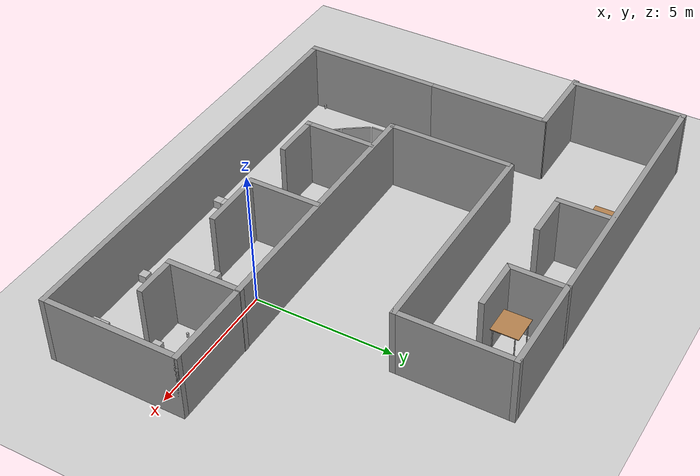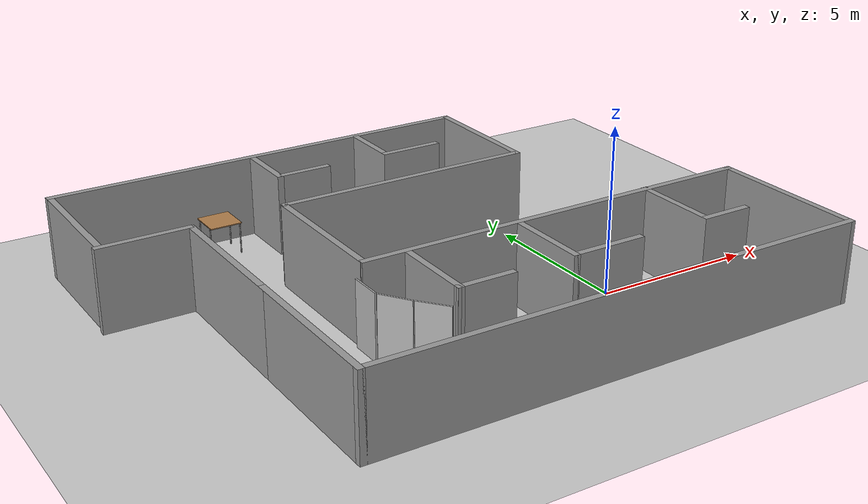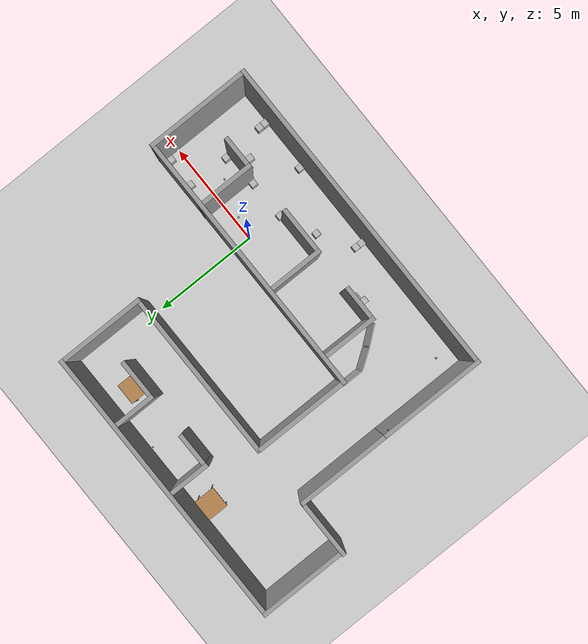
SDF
<sdf version="1.4">
 <world name="default">
  <physics type="ode">
   <gravity>0 0 -9.81</gravity>
   <ode>
    <solver><type>quick</type><iters>20</iters><sor>1</sor></solver>
    <constraints>
     <cfm>0</cfm>
     <erp>0.2</erp>
     <contact_max_correcting_vel>100</contact_max_correcting_vel>
     <contact_surface_layer>0</contact_surface_layer>
    </constraints>
   </ode>
   <real_time_update_rate>1000</real_time_update_rate>
   <max_step_size>0.001</max_step_size>
   <real_time_factor>1</real_time_factor>
  </physics>
  <light name="light1" type="directional">
   <pose>-2 0 4 0 -0 0</pose>
   <diffuse>1 1 1 1</diffuse>
   <specular>0.1 0.1 0.1 1</specular>
   <attenuation>
    <range>20</range>
    <constant>0.9</constant>
    <linear>0.01</linear>
    <quadratic>0.001</quadratic>
   </attenuation>
   <direction>0.2 0 -1</direction>
  </light>
  <model name="ground_plane">
   <static>1</static>
   <link name="link">
    <collision name="collision">
     <geometry><plane><normal>0 0 1</normal><size>100 100</size></plane></geometry>
     <surface><friction><ode><mu>100</mu><mu2>50</mu2></ode></friction></surface>
    </collision>
    <visual name="visual">
     <cast_shadows>0</cast_shadows>
     <geometry><plane><normal>0 0 1</normal><size>100 100</size></plane></geometry>
     <material>
      <script><uri>file://media/materials/scripts/gazebo.material</uri><name>Gazebo/Grey</name></script>
     </material>
    </visual>
    <velocity_decay><linear>0</linear><angular>0</angular></velocity_decay>
   </link>
  </model>
  <model name="building4">
   <pose>0.0604 0.08053 0 0 -0 0</pose>
   <link name="Wall_13">
    <collision name="Wall_13_Collision">
     <geometry><box><size>5.01 0.2 2.5</size></box></geometry>
     <pose>0 0 1.25 0 -0 0</pose>
    </collision>
    <visual name="Wall_13_Visual">
     <pose>0 0 1.25 0 -0 0</pose>
     <geometry><box><size>5.01 0.2 2.5</size></box></geometry>
     <material>
      <script><uri>file://media/materials/scripts/gazebo.material</uri><name>Gazebo/Grey</name></script>
     </material>
    </visual>
    <velocity_decay><linear>0</linear><angular>0</angular></velocity_decay>
    <pose>-10.233 -1.616 0 0 0 -1.5708</pose>
   </link>
   <link name="Wall_14">
    <collision name="Wall_14_Collision">
     <geometry><box><size>15.55 0.2 2.5</size></box></geometry>
     <pose>0 0 1.25 0 -0 0</pose>
    </collision>
    <visual name="Wall_14_Visual">
     <pose>0 0 1.25 0 -0 0</pose>
     <geometry><box><size>15.55 0.2 2.5</size></box></geometry>
     <material>
      <script><uri>file://media/materials/scripts/gazebo.material</uri><name>Gazebo/Grey</name></script>
     </material>
    </visual>
    <velocity_decay><linear>0</linear><angular>0</angular></velocity_decay>
    <pose>-2.55804 -4.02081 0 0 -0 2.5e-05</pose>
   </link>
   <link name="Wall_15">
    <collision name="Wall_15_Collision">
     <geometry><box><size>5.01 0.2 2.5</size></box></geometry>
     <pose>0 0 1.25 0 -0 0</pose>
    </collision>
    <visual name="Wall_15_Visual">
     <pose>0 0 1.25 0 -0 0</pose>
     <geometry><box><size>5.01 0.2 2.5</size></box></geometry>
     <material>
      <script><uri>file://media/materials/scripts/gazebo.material</uri><name>Gazebo/Grey</name></script>
     </material>
    </visual>
    <velocity_decay><linear>0</linear><angular>0</angular></velocity_decay>
    <pose>5.11693 -1.61562 0 0 -0 1.5708</pose>
   </link>
   <link name="Wall_16">
    <collision name="Wall_16_Collision">
     <geometry><box><size>12.72 0.2 2.5</size></box></geometry>
     <pose>0 0 1.25 0 -0 0</pose>
    </collision>
    <visual name="Wall_16_Visual">
     <pose>0 0 1.25 0 -0 0</pose>
     <geometry><box><size>12.72 0.2 2.5</size></box></geometry>
     <material>
      <script><uri>file://media/materials/scripts/gazebo.material</uri><name>Gazebo/Grey</name></script>
     </material>
    </visual>
    <velocity_decay><linear>0</linear><angular>0</angular></velocity_decay>
    <pose>-1.14308 0.789383 0 0 -0 3.14159</pose>
   </link>
   <link name="Wall_19">
    <collision name="Wall_19_Collision">
     <geometry><box><size>2.75243 0.2 2.5</size></box></geometry>
     <pose>0 0 1.25 0 -0 0</pose>
    </collision>
    <visual name="Wall_19_Visual">
     <pose>0 0 1.25 0 -0 0</pose>
     <geometry><box><size>2.75243 0.2 2.5</size></box></geometry>
     <material>
      <script><uri>file://media/materials/scripts/gazebo.material</uri><name>Gazebo/Grey</name></script>
     </material>
    </visual>
    <velocity_decay><linear>0</linear><angular>0</angular></velocity_decay>
    <pose>1.95298 -0.471453 0 0 0 -1.5708</pose>
   </link>
   <link name="Wall_20">
    <collision name="Wall_20_Collision">
     <geometry><box><size>1.61606 0.2 2.5</size></box></geometry>
     <pose>0 0 1.25 0 -0 0</pose>
    </collision>
    <visual name="Wall_20_Visual">
     <pose>0 0 1.25 0 -0 0</pose>
     <geometry><box><size>1.61606 0.2 2.5</size></box></geometry>
     <material>
      <script><uri>file://media/materials/scripts/gazebo.material</uri><name>Gazebo/Grey</name></script>
     </material>
    </visual>
    <velocity_decay><linear>0</linear><angular>0</angular></velocity_decay>
    <pose>2.66102 -1.74767 0 0 -0 0</pose>
   </link>
   <link name="Wall_22">
    <collision name="Wall_22_Collision">
     <geometry><box><size>2.69952 0.2 2.5</size></box></geometry>
     <pose>0 0 1.25 0 -0 0</pose>
    </collision>
    <visual name="Wall_22_Visual">
     <pose>0 0 1.25 0 -0 0</pose>
     <geometry><box><size>2.69952 0.2 2.5</size></box></geometry>
     <material>
      <script><uri>file://media/materials/scripts/gazebo.material</uri><name>Gazebo/Grey</name></script>
     </material>
    </visual>
    <velocity_decay><linear>0</linear><angular>0</angular></velocity_decay>
    <pose>-2.56997 -0.511128 0 0 0 -1.5708</pose>
   </link>
   <link name="Wall_23">
    <collision name="Wall_23_Collision">
     <geometry><box><size>2.34347 0.2 2.5</size></box></geometry>
     <pose>0 0 1.25 0 -0 0</pose>
    </collision>
    <visual name="Wall_23_Visual">
     <pose>0 0 1.25 0 -0 0</pose>
     <geometry><box><size>2.34347 0.2 2.5</size></box></geometry>
     <material>
      <script><uri>file://media/materials/scripts/gazebo.material</uri><name>Gazebo/Grey</name></script>
     </material>
    </visual>
    <velocity_decay><linear>0</linear><angular>0</angular></velocity_decay>
    <pose>-1.49823 -1.76089 0 0 -0 0</pose>
   </link>
   <link name="Wall_27">
    <collision name="Wall_27_Collision">
     <geometry><box><size>2.67304 0.2 2.5</size></box></geometry>
     <pose>0 0 1.25 0 -0 0</pose>
    </collision>
    <visual name="Wall_27_Visual">
     <pose>0 0 1.25 0 -0 0</pose>
     <geometry><box><size>2.67304 0.2 2.5</size></box></geometry>
     <material>
      <script><uri>file://media/materials/scripts/gazebo.material</uri><name>Gazebo/Grey</name></script>
     </material>
    </visual>
    <velocity_decay><linear>0</linear><angular>0</angular></velocity_decay>
    <pose>-6.134 -0.5245 0 0 0 -1.57646</pose>
   </link>
   <link name="Wall_28">
    <collision name="Wall_28_Collision">
     <geometry><box><size>1.78778 0.2 2.5</size></box></geometry>
     <pose>0 0 1.25 0 -0 0</pose>
    </collision>
    <visual name="Wall_28_Visual">
     <pose>0 0 1.25 0 -0 0</pose>
     <geometry><box><size>1.78778 0.2 2.5</size></box></geometry>
     <material>
      <script><uri>file://media/materials/scripts/gazebo.material</uri><name>Gazebo/Grey</name></script>
     </material>
    </visual>
    <velocity_decay><linear>0</linear><angular>0</angular></velocity_decay>
    <pose>-5.34711 -1.761 0 0 -0 0</pose>
   </link>
   <link name="Wall_30">
    <collision name="Wall_30_Collision">
     <geometry><box><size>4.722 0.2 2.5</size></box></geometry>
     <pose>0 0 1.25 0 -0 0</pose>
    </collision>
    <visual name="Wall_30_Visual">
     <pose>0 0 1.25 0 -0 0</pose>
     <geometry><box><size>4.722 0.2 2.5</size></box></geometry>
     <material>
      <script><uri>file://media/materials/scripts/gazebo.material</uri><name>Gazebo/Grey</name></script>
     </material>
    </visual>
    <velocity_decay><linear>0</linear><angular>0</angular></velocity_decay>
    <pose>-10.233 2.952 0 0 -0 1.5708</pose>
   </link>
   <link name="Wall_32">
    <collision name="Wall_32_Collision">
     <geometry><box><size>4.52699 0.2 2.5</size></box></geometry>
     <pose>0 0 1.25 0 -0 0</pose>
    </collision>
    <visual name="Wall_32_Visual">
     <pose>0 0 1.25 0 -0 0</pose>
     <geometry><box><size>4.52699 0.2 2.5</size></box></geometry>
     <material>
      <script><uri>file://media/materials/scripts/gazebo.material</uri><name>Gazebo/Grey</name></script>
     </material>
    </visual>
    <velocity_decay><linear>0</linear><angular>0</angular></velocity_decay>
    <pose>-7.41943 3.02427 0 0 -0 1.5708</pose>
   </link>
   <link name="Wall_35">
    <collision name="Wall_35_Collision">
     <geometry><box><size>2.80534 0.2 2.5</size></box></geometry>
     <pose>0 0 1.25 0 -0 0</pose>
    </collision>
    <visual name="Wall_35_Visual">
     <pose>0 0 1.25 0 -0 0</pose>
     <geometry><box><size>2.80534 0.2 2.5</size></box></geometry>
     <material>
      <script><uri>file://media/materials/scripts/gazebo.material</uri><name>Gazebo/Grey</name></script>
     </material>
    </visual>
    <velocity_decay><linear>0</linear><angular>0</angular></velocity_decay>
    <pose>-11.5868 5.23749 0 0 -0 3.14159</pose>
   </link>
   <link name="Wall_38">
    <collision name="Wall_38_Collision">
     <geometry><box><size>4.19003 0.2 2.5</size></box></geometry>
     <pose>0 0 1.25 0 -0 0</pose>
    </collision>
    <visual name="Wall_38_Visual">
     <pose>0 0 1.25 0 -0 0</pose>
     <geometry><box><size>4.19003 0.2 2.5</size></box></geometry>
     <material>
      <script><uri>file://media/materials/scripts/gazebo.material</uri><name>Gazebo/Grey</name></script>
     </material>
    </visual>
    <velocity_decay><linear>0</linear><angular>0</angular></velocity_decay>
    <pose>-12.8151 7.30342 0 0 -0 1.5708</pose>
   </link>
   <link name="Wall_39">
    <collision name="Wall_39_Collision">
     <geometry><box><size>13.5347 0.2 2.5</size></box></geometry>
     <pose>0 0 1.25 0 -0 0</pose>
    </collision>
    <visual name="Wall_39_Visual">
     <pose>0 0 1.25 0 -0 0</pose>
     <geometry><box><size>13.5347 0.2 2.5</size></box></geometry>
     <material>
      <script><uri>file://media/materials/scripts/gazebo.material</uri><name>Gazebo/Grey</name></script>
     </material>
    </visual>
    <velocity_decay><linear>0</linear><angular>0</angular></velocity_decay>
    <pose>-6.14777 9.29843 0 0 -0 0</pose>
   </link>
   <link name="Wall_40">
    <collision name="Wall_40_Collision">
     <geometry><box><size>4.21663 0.2 2.5</size></box></geometry>
     <pose>0 0 1.25 0 -0 0</pose>
    </collision>
    <visual name="Wall_40_Visual">
     <pose>0 0 1.25 0 -0 0</pose>
     <geometry><box><size>4.21663 0.2 2.5</size></box></geometry>
     <material>
      <script><uri>file://media/materials/scripts/gazebo.material</uri><name>Gazebo/Grey</name></script>
     </material>
    </visual>
    <velocity_decay><linear>0</linear><angular>0</angular></velocity_decay>
    <pose>0.51957 7.29012 0 0 0 -1.5708</pose>
   </link>
   <link name="Wall_41">
    <collision name="Wall_41_Collision">
     <geometry><box><size>8.1083 0.2 2.5</size></box></geometry>
     <pose>0 0 1.25 0 -0 0</pose>
    </collision>
    <visual name="Wall_41_Visual">
     <pose>0 0 1.25 0 -0 0</pose>
     <geometry><box><size>8.1083 0.2 2.5</size></box></geometry>
     <material>
      <script><uri>file://media/materials/scripts/gazebo.material</uri><name>Gazebo/Grey</name></script>
     </material>
    </visual>
    <velocity_decay><linear>0</linear><angular>0</angular></velocity_decay>
    <pose>-3.43455 5.2818 0 0 -0 3.14159</pose>
   </link>
   <link name="Wall_43">
    <collision name="Wall_43_Collision">
     <geometry><box><size>2.14297 0.2 2.5</size></box></geometry>
     <pose>0 0 1.25 0 -0 0</pose>
    </collision>
    <visual name="Wall_43_Visual">
     <pose>0 0 1.25 0 -0 0</pose>
     <geometry><box><size>2.14297 0.2 2.5</size></box></geometry>
     <material>
      <script><uri>file://media/materials/scripts/gazebo.material</uri><name>Gazebo/Grey</name></script>
     </material>
    </visual>
    <velocity_decay><linear>0</linear><angular>0</angular></velocity_decay>
    <pose>-2.91992 8.32953 0 0 0 -1.5708</pose>
   </link>
   <link name="Wall_44">
    <collision name="Wall_44_Collision">
     <geometry><box><size>1.98106 0.2 2.5</size></box></geometry>
     <pose>0 0 1.25 0 -0 0</pose>
    </collision>
    <visual name="Wall_44_Visual">
     <pose>0 0 1.25 0 -0 0</pose>
     <geometry><box><size>1.98106 0.2 2.5</size></box></geometry>
     <material>
      <script><uri>file://media/materials/scripts/gazebo.material</uri><name>Gazebo/Grey</name></script>
     </material>
    </visual>
    <velocity_decay><linear>0</linear><angular>0</angular></velocity_decay>
    <pose>-2.02939 7.35804 0 0 -0 0</pose>
   </link>
   <link name="Wall_54">
    <collision name="Wall_54_Collision">
     <geometry><box><size>2.03541 0.2 2.5</size></box></geometry>
     <pose>0 0 1.25 0 -0 0</pose>
    </collision>
    <visual name="Wall_54_Visual">
     <pose>0 0 1.25 0 -0 0</pose>
     <geometry><box><size>2.03541 0.2 2.5</size></box></geometry>
     <material>
      <script><uri>file://media/materials/scripts/gazebo.material</uri><name>Gazebo/Grey</name></script>
     </material>
    </visual>
    <velocity_decay><linear>0</linear><angular>0</angular></velocity_decay>
    <pose>-6.52977 8.31143 0 0 0 -1.5708</pose>
   </link>
   <link name="Wall_55">
    <collision name="Wall_55_Collision">
     <geometry><box><size>1.7601 0.2 2.5</size></box></geometry>
     <pose>0 0 1.25 0 -0 0</pose>
    </collision>
    <visual name="Wall_55_Visual">
     <pose>0 0 1.25 0 -0 0</pose>
     <geometry><box><size>1.7601 0.2 2.5</size></box></geometry>
     <material>
      <script><uri>file://media/materials/scripts/gazebo.material</uri><name>Gazebo/Grey</name></script>
     </material>
    </visual>
    <velocity_decay><linear>0</linear><angular>0</angular></velocity_decay>
    <pose>-5.74972 7.39373 0 0 -0 0</pose>
   </link>
   <static>1</static>
  </model>
  <scene><ambient>0.4 0.4 0.4 1</ambient><background>0.7 0.7 0.7 1</background><shadows>1</shadows></scene>
  <spherical_coordinates>
   <surface_model>EARTH_WGS84</surface_model>
   <latitude_deg>0</latitude_deg>
   <longitude_deg>0</longitude_deg>
   <elevation>0</elevation>
   <heading_deg>0</heading_deg>
  </spherical_coordinates>
  <model name="cocacola">
   <static>0</static>
   <link name="link">
    <inertial>
     <mass>0.25</mass>
     <inertia><ixx>0</ixx><ixy>0</ixy><ixz>0</ixz><iyy>0</iyy><iyz>0</iyz><izz>0</izz></inertia>
    </inertial>
    <collision name="collision">
     <pose>0 0 0.075 -3.14159 -0 0</pose>
     <geometry><cylinder><radius>0.04</radius><length>0.15</length></cylinder></geometry>
    </collision>
    <visual name="visual">
     <pose>0 0 0.075 -3.14159 -0 0</pose>
     <geometry><cylinder><radius>0.04</radius><length>0.15</length></cylinder></geometry>
     <material>
      <script>
       <uri>model://cocacola/material/scripts</uri>
       <uri>model://cocacola/material/textures</uri>
       <name>Custom/cocacola</name>
      </script>
     </material>
    </visual>
    <velocity_decay><linear>0</linear><angular>0</angular></velocity_decay>
   </link>
   <pose>2.68091 -0.744272 0.299998 0.000162 -9.6e-05 2.9e-05</pose>
  </model>
  <model name="cocacola_0">
   <static>0</static>
   <link name="link">
    <inertial>
     <mass>0.25</mass>
     <inertia><ixx>0</ixx><ixy>0</ixy><ixz>0</ixz><iyy>0</iyy><iyz>0</iyz><izz>0</izz></inertia>
    </inertial>
    <collision name="collision">
     <pose>0 0 0.075 -3.14159 -0 0</pose>
     <geometry><cylinder><radius>0.04</radius><length>0.15</length></cylinder></geometry>
    </collision>
    <visual name="visual">
     <pose>0 0 0.075 -3.14159 -0 0</pose>
     <geometry><cylinder><radius>0.04</radius><length>0.15</length></cylinder></geometry>
     <material>
      <script>
       <uri>model://cocacola/material/scripts</uri>
       <uri>model://cocacola/material/textures</uri>
       <name>Custom/cocacola</name>
      </script>
     </material>
    </visual>
    <velocity_decay><linear>0</linear><angular>0</angular></velocity_decay>
   </link>
   <pose>1 -0.177691 0.300008 3.1e-05 -0.000208 4e-06</pose>
  </model>
  <model name="cocacola_1">
   <static>0</static>
   <link name="link">
    <inertial>
     <mass>0.25</mass>
     <inertia><ixx>0</ixx><ixy>0</ixy><ixz>0</ixz><iyy>0</iyy><iyz>0</iyz><izz>0</izz></inertia>
    </inertial>
    <collision name="collision">
     <pose>0 0 0.075 -3.14159 -0 0</pose>
     <geometry><cylinder><radius>0.04</radius><length>0.15</length></cylinder></geometry>
    </collision>
    <visual name="visual">
     <pose>0 0 0.075 -3.14159 -0 0</pose>
     <geometry><cylinder><radius>0.04</radius><length>0.15</length></cylinder></geometry>
     <material>
      <script>
       <uri>model://cocacola/material/scripts</uri>
       <uri>model://cocacola/material/textures</uri>
       <name>Custom/cocacola</name>
      </script>
     </material>
    </visual>
    <velocity_decay><linear>0</linear><angular>0</angular></velocity_decay>
   </link>
   <pose>-9.25325 -3 0.660008 3.1e-05 -0.0002 9e-06</pose>
  </model>
  <model name="table_1m">
   <static>1</static>
   <link name="link">
    <collision name="surface">
     <pose>0 0 1.01 0 -0 0</pose>
     <geometry><box><size>1 1.01 0.03</size></box></geometry>
    </collision>
    <visual name="visual1">
     <pose>0 0 1.01 0 -0 0</pose>
     <geometry><box><size>1 1.01 0.03</size></box></geometry>
     <material>
      <script><uri>file://media/materials/scripts/gazebo.material</uri><name>Gazebo/Wood</name></script>
     </material>
    </visual>
    <collision name="front_left_leg">
     <pose>0.48 0.38 0.5005 0 -0 0</pose>
     <geometry><cylinder><radius>0.02</radius><length>1.01</length></cylinder></geometry>
    </collision>
    <visual name="front_left_leg">
     <pose>0.48 0.38 0.5005 0 -0 0</pose>
     <geometry><cylinder><radius>0.02</radius><length>1.01</length></cylinder></geometry>
     <material>
      <script><uri>file://media/materials/scripts/gazebo.material</uri><name>Gazebo/Grey</name></script>
     </material>
    </visual>
    <collision name="front_right_leg">
     <pose>0.48 -0.38 0.5005 0 -0 0</pose>
     <geometry><cylinder><radius>0.02</radius><length>1.01</length></cylinder></geometry>
    </collision>
    <visual name="front_right_leg">
     <pose>0.48 -0.38 0.5005 0 -0 0</pose>
     <geometry><cylinder><radius>0.02</radius><length>1.01</length></cylinder></geometry>
     <material>
      <script><uri>file://media/materials/scripts/gazebo.material</uri><name>Gazebo/Grey</name></script>
     </material>
    </visual>
    <collision name="back_right_leg">
     <pose>-0.48 -0.38 0.5005 0 -0 0</pose>
     <geometry><cylinder><radius>0.02</radius><length>1.01</length></cylinder></geometry>
    </collision>
    <visual name="back_right_leg">
     <pose>-0.48 -0.38 0.5005 0 -0 0</pose>
     <geometry><cylinder><radius>0.02</radius><length>1.01</length></cylinder></geometry>
     <material>
      <script><uri>file://media/materials/scripts/gazebo.material</uri><name>Gazebo/Grey</name></script>
     </material>
    </visual>
    <collision name="back_left_leg">
     <pose>-0.48 0.38 0.5005 0 -0 0</pose>
     <geometry><cylinder><radius>0.02</radius><length>1.01</length></cylinder></geometry>
    </collision>
    <visual name="back_left_leg">
     <pose>-0.48 0.38 0.5005 0 -0 0</pose>
     <geometry><cylinder><radius>0.02</radius><length>1.01</length></cylinder></geometry>
     <material>
      <script><uri>file://media/materials/scripts/gazebo.material</uri><name>Gazebo/Grey</name></script>
     </material>
    </visual>
    <velocity_decay><linear>0</linear><angular>0</angular></velocity_decay>
   </link>
   <pose>-8 8.5652 0 0 -0 0</pose>
  </model>
  <model name="cocacola_3">
   <static>0</static>
   <link name="link">
    <inertial>
     <mass>0.25</mass>
     <inertia><ixx>0</ixx><ixy>0</ixy><ixz>0</ixz><iyy>0</iyy><iyz>0</iyz><izz>0</izz></inertia>
    </inertial>
    <collision name="collision">
     <pose>0 0 0.075 -3.14159 -0 0</pose>
     <geometry><cylinder><radius>0.04</radius><length>0.15</length></cylinder></geometry>
    </collision>
    <visual name="visual">
     <pose>0 0 0.075 -3.14159 -0 0</pose>
     <geometry><cylinder><radius>0.04</radius><length>0.15</length></cylinder></geometry>
     <material>
      <script>
       <uri>model://cocacola/material/scripts</uri>
       <uri>model://cocacola/material/textures</uri>
       <name>Custom/cocacola</name>
      </script>
     </material>
    </visual>
    <velocity_decay><linear>0</linear><angular>0</angular></velocity_decay>
   </link>
   <pose>-4.52272 9.0837 0.61001 -4e-06 -0.000244 1.8e-05</pose>
  </model>
  <model name="table_1m_0">
   <static>1</static>
   <link name="link">
    <collision name="surface">
     <pose>0 0 1.01 0 -0 0</pose>
     <geometry><box><size>1 1.01 0.03</size></box></geometry>
    </collision>
    <visual name="visual1">
     <pose>0 0 1.01 0 -0 0</pose>
     <geometry><box><size>1 1.01 0.03</size></box></geometry>
     <material>
      <script><uri>file://media/materials/scripts/gazebo.material</uri><name>Gazebo/Wood</name></script>
     </material>
    </visual>
    <collision name="front_left_leg">
     <pose>0.48 0.38 0.5005 0 -0 0</pose>
     <geometry><cylinder><radius>0.02</radius><length>1.01</length></cylinder></geometry>
    </collision>
    <visual name="front_left_leg">
     <pose>0.48 0.38 0.5005 0 -0 0</pose>
     <geometry><cylinder><radius>0.02</radius><length>1.01</length></cylinder></geometry>
     <material>
      <script><uri>file://media/materials/scripts/gazebo.material</uri><name>Gazebo/Grey</name></script>
     </material>
    </visual>
    <collision name="front_right_leg">
     <pose>0.48 -0.38 0.5005 0 -0 0</pose>
     <geometry><cylinder><radius>0.02</radius><length>1.01</length></cylinder></geometry>
    </collision>
    <visual name="front_right_leg">
     <pose>0.48 -0.38 0.5005 0 -0 0</pose>
     <geometry><cylinder><radius>0.02</radius><length>1.01</length></cylinder></geometry>
     <material>
      <script><uri>file://media/materials/scripts/gazebo.material</uri><name>Gazebo/Grey</name></script>
     </material>
    </visual>
    <collision name="back_right_leg">
     <pose>-0.48 -0.38 0.5005 0 -0 0</pose>
     <geometry><cylinder><radius>0.02</radius><length>1.01</length></cylinder></geometry>
    </collision>
    <visual name="back_right_leg">
     <pose>-0.48 -0.38 0.5005 0 -0 0</pose>
     <geometry><cylinder><radius>0.02</radius><length>1.01</length></cylinder></geometry>
     <material>
      <script><uri>file://media/materials/scripts/gazebo.material</uri><name>Gazebo/Grey</name></script>
     </material>
    </visual>
    <collision name="back_left_leg">
     <pose>-0.48 0.38 0.5005 0 -0 0</pose>
     <geometry><cylinder><radius>0.02</radius><length>1.01</length></cylinder></geometry>
    </collision>
    <visual name="back_left_leg">
     <pose>-0.48 0.38 0.5005 0 -0 0</pose>
     <geometry><cylinder><radius>0.02</radius><length>1.01</length></cylinder></geometry>
     <material>
      <script><uri>file://media/materials/scripts/gazebo.material</uri><name>Gazebo/Grey</name></script>
     </material>
    </visual>
    <velocity_decay><linear>0</linear><angular>0</angular></velocity_decay>
   </link>
   <pose>-2 8 0 0 -0 0</pose>
  </model>
  <model name="box">
   <static>0</static>
   <link name="box">
    <pose>0 0 0.5 0 -0 0</pose>
    <collision name="collision"><geometry><box><size>0.3 0.3 0.3</size></box></geometry></collision>
    <visual name="visual">
     <geometry><box><size>0.3 0.3 0.3</size></box></geometry>
     <material>
      <script>
       <uri>model://box/material/scripts</uri>
       <uri>model://box/material/textures</uri>
       <name>Custom/box</name>
      </script>
     </material>
    </visual>
    <velocity_decay><linear>0</linear><angular>0</angular></velocity_decay>
    <inertial>
     <inertia><ixx>1</ixx><ixy>0</ixy><ixz>0</ixz><iyy>1</iyy><iyz>0</iyz><izz>1</izz></inertia>
     <mass>1</mass>
    </inertial>
   </link>
   <pose>-0.084765 -1.65647 -0.35 1e-06 1e-06 5.3e-05</pose>
  </model>
  <model name="box_0">
   <static>0</static>
   <link name="box">
    <pose>0 0 0.5 0 -0 0</pose>
    <collision name="collision"><geometry><box><size>0.3 0.3 0.3</size></box></geometry></collision>
    <visual name="visual">
     <geometry><box><size>0.3 0.3 0.3</size></box></geometry>
     <material>
      <script>
       <uri>model://box/material/scripts</uri>
       <uri>model://box/material/textures</uri>
       <name>Custom/box</name>
      </script>
     </material>
    </visual>
    <velocity_decay><linear>0</linear><angular>0</angular></velocity_decay>
    <inertial>
     <inertia><ixx>1</ixx><ixy>0</ixy><ixz>0</ixz><iyy>1</iyy><iyz>0</iyz><izz>1</izz></inertia>
     <mass>1</mass>
    </inertial>
   </link>
   <pose>3.40517 -1.40484 -0.349998 1e-06 1.3e-05 -1.3e-05</pose>
  </model>
  <model name="box_1">
   <static>0</static>
   <link name="box">
    <pose>0 0 0.5 0 -0 0</pose>
    <collision name="collision"><geometry><box><size>0.3 0.3 0.3</size></box></geometry></collision>
    <visual name="visual">
     <geometry><box><size>0.3 0.3 0.3</size></box></geometry>
     <material>
      <script>
       <uri>model://box/material/scripts</uri>
       <uri>model://box/material/textures</uri>
       <name>Custom/box</name>
      </script>
     </material>
    </visual>
    <velocity_decay><linear>0</linear><angular>0</angular></velocity_decay>
    <inertial>
     <inertia><ixx>1</ixx><ixy>0</ixy><ixz>0</ixz><iyy>1</iyy><iyz>0</iyz><izz>1</izz></inertia>
     <mass>1</mass>
    </inertial>
   </link>
   <pose>3.45349 0.568201 -0.35 0 -0 -0.000206</pose>
  </model>
  <model name="box_2">
   <static>0</static>
   <link name="box">
    <pose>0 0 0.5 0 -0 0</pose>
    <collision name="collision"><geometry><box><size>0.3 0.3 0.3</size></box></geometry></collision>
    <visual name="visual">
     <geometry><box><size>0.3 0.3 0.3</size></box></geometry>
     <material>
      <script>
       <uri>model://box/material/scripts</uri>
       <uri>model://box/material/textures</uri>
       <name>Custom/box</name>
      </script>
     </material>
    </visual>
    <velocity_decay><linear>0</linear><angular>0</angular></velocity_decay>
    <inertial>
     <inertia><ixx>1</ixx><ixy>0</ixy><ixz>0</ixz><iyy>1</iyy><iyz>0</iyz><izz>1</izz></inertia>
     <mass>1</mass>
    </inertial>
   </link>
   <pose>4.85744 0.537547 -0.35 5.16988e-26 -2e-06 -8.4e-05</pose>
  </model>
  <model name="box_3">
   <static>0</static>
   <link name="box">
    <pose>0 0 0.5 0 -0 0</pose>
    <collision name="collision"><geometry><box><size>0.3 0.3 0.3</size></box></geometry></collision>
    <visual name="visual">
     <geometry><box><size>0.3 0.3 0.3</size></box></geometry>
     <material>
      <script>
       <uri>model://box/material/scripts</uri>
       <uri>model://box/material/textures</uri>
       <name>Custom/box</name>
      </script>
     </material>
    </visual>
    <velocity_decay><linear>0</linear><angular>0</angular></velocity_decay>
    <inertial>
     <inertia><ixx>1</ixx><ixy>0</ixy><ixz>0</ixz><iyy>1</iyy><iyz>0</iyz><izz>1</izz></inertia>
     <mass>1</mass>
    </inertial>
   </link>
   <pose>1.76308 -1.62442 -0.350001 4e-06 -3e-06 -0.001889</pose>
  </model>
  <model name="box_5">
   <static>0</static>
   <link name="box">
    <pose>0 0 0.5 0 -0 0</pose>
    <collision name="collision"><geometry><box><size>0.3 0.3 0.3</size></box></geometry></collision>
    <visual name="visual">
     <geometry><box><size>0.3 0.3 0.3</size></box></geometry>
     <material>
      <script>
       <uri>model://box/material/scripts</uri>
       <uri>model://box/material/textures</uri>
       <name>Custom/box</name>
      </script>
     </material>
    </visual>
    <velocity_decay><linear>0</linear><angular>0</angular></velocity_decay>
    <inertial>
     <inertia><ixx>1</ixx><ixy>0</ixy><ixz>0</ixz><iyy>1</iyy><iyz>0</iyz><izz>1</izz></inertia>
     <mass>1</mass>
    </inertial>
   </link>
   <pose>-5 -2.00001 -0.35 -2e-06 -0 0.000118</pose>
  </model>
  <model name="box_8">
   <static>0</static>
   <link name="box">
    <pose>0 0 0.5 0 -0 0</pose>
    <collision name="collision"><geometry><box><size>0.3 0.3 0.3</size></box></geometry></collision>
    <visual name="visual">
     <geometry><box><size>0.3 0.3 0.3</size></box></geometry>
     <material>
      <script>
       <uri>model://box/material/scripts</uri>
       <uri>model://box/material/textures</uri>
       <name>Custom/box</name>
      </script>
     </material>
    </visual>
    <velocity_decay><linear>0</linear><angular>0</angular></velocity_decay>
    <inertial>
     <inertia><ixx>1</ixx><ixy>0</ixy><ixz>0</ixz><iyy>1</iyy><iyz>0</iyz><izz>1</izz></inertia>
     <mass>1</mass>
    </inertial>
   </link>
   <pose>2.48617 -1.91721 -0.349999 -5e-06 1e-06 0.000199</pose>
  </model>
  <model name="box_9">
   <static>0</static>
   <link name="box">
    <pose>0 0 0.5 0 -0 0</pose>
    <collision name="collision"><geometry><box><size>0.3 0.3 0.3</size></box></geometry></collision>
    <visual name="visual">
     <geometry><box><size>0.3 0.3 0.3</size></box></geometry>
     <material>
      <script>
       <uri>model://box/material/scripts</uri>
       <uri>model://box/material/textures</uri>
       <name>Custom/box</name>
      </script>
     </material>
    </visual>
    <velocity_decay><linear>0</linear><angular>0</angular></velocity_decay>
    <inertial>
     <inertia><ixx>1</ixx><ixy>0</ixy><ixz>0</ixz><iyy>1</iyy><iyz>0</iyz><izz>1</izz></inertia>
     <mass>1</mass>
    </inertial>
   </link>
   <pose>1.01486 -3.6544 -0.35 1e-06 -1e-06 -0.000112</pose>
  </model>
  <model name="box_7">
   <static>0</static>
   <link name="box">
    <pose>0 0 0.5 0 -0 0</pose>
    <collision name="collision"><geometry><box><size>0.3 0.3 0.3</size></box></geometry></collision>
    <visual name="visual">
     <geometry><box><size>0.3 0.3 0.3</size></box></geometry>
     <material>
      <script>
       <uri>model://box/material/scripts</uri>
       <uri>model://box/material/textures</uri>
       <name>Custom/box</name>
      </script>
     </material>
    </visual>
    <velocity_decay><linear>0</linear><angular>0</angular></velocity_decay>
    <inertial>
     <inertia><ixx>1</ixx><ixy>0</ixy><ixz>0</ixz><iyy>1</iyy><iyz>0</iyz><izz>1</izz></inertia>
     <mass>1</mass>
    </inertial>
   </link>
   <pose>-3.2886 -3.69028 -0.35 -1e-06 -0 7.6e-05</pose>
  </model>
  <model name="box_11">
   <static>0</static>
   <link name="box">
    <pose>0 0 0.5 0 -0 0</pose>
    <collision name="collision"><geometry><box><size>0.3 0.3 0.3</size></box></geometry></collision>
    <visual name="visual">
     <geometry><box><size>0.3 0.3 0.3</size></box></geometry>
     <material>
      <script>
       <uri>model://box/material/scripts</uri>
       <uri>model://box/material/textures</uri>
       <name>Custom/box</name>
      </script>
     </material>
    </visual>
    <velocity_decay><linear>0</linear><angular>0</angular></velocity_decay>
    <inertial>
     <inertia><ixx>1</ixx><ixy>0</ixy><ixz>0</ixz><iyy>1</iyy><iyz>0</iyz><izz>1</izz></inertia>
     <mass>1</mass>
    </inertial>
   </link>
   <pose>2.73141 -2.21725 -0.35 -1e-06 -1e-06 0.000657</pose>
  </model>
  <model name="box_13">
   <static>0</static>
   <link name="box">
    <pose>0 0 0.5 0 -0 0</pose>
    <collision name="collision"><geometry><box><size>0.3 0.3 0.3</size></box></geometry></collision>
    <visual name="visual">
     <geometry><box><size>0.3 0.3 0.3</size></box></geometry>
     <material>
      <script>
       <uri>model://box/material/scripts</uri>
       <uri>model://box/material/textures</uri>
       <name>Custom/box</name>
      </script>
     </material>
    </visual>
    <velocity_decay><linear>0</linear><angular>0</angular></velocity_decay>
    <inertial>
     <inertia><ixx>1</ixx><ixy>0</ixy><ixz>0</ixz><iyy>1</iyy><iyz>0</iyz><izz>1</izz></inertia>
     <mass>1</mass>
    </inertial>
   </link>
   <pose>3.5182 -3.6901 -0.35 0 -0 6.2e-05</pose>
  </model>
  <model name="box_19">
   <static>0</static>
   <link name="box">
    <pose>0 0 0.5 0 -0 0</pose>
    <collision name="collision"><geometry><box><size>0.3 0.3 0.3</size></box></geometry></collision>
    <visual name="visual">
     <geometry><box><size>0.3 0.3 0.3</size></box></geometry>
     <material>
      <script>
       <uri>model://box/material/scripts</uri>
       <uri>model://box/material/textures</uri>
       <name>Custom/box</name>
      </script>
     </material>
    </visual>
    <velocity_decay><linear>0</linear><angular>0</angular></velocity_decay>
    <inertial>
     <inertia><ixx>1</ixx><ixy>0</ixy><ixz>0</ixz><iyy>1</iyy><iyz>0</iyz><izz>1</izz></inertia>
     <mass>1</mass>
    </inertial>
   </link>
   <pose>3.51856 -3.38997 -0.35 2.06795e-25 2e-06 0.000845</pose>
  </model>
  <model name="box_6">
   <static>0</static>
   <link name="box">
    <pose>0 0 0.5 0 -0 0</pose>
    <collision name="collision"><geometry><box><size>0.3 0.3 0.3</size></box></geometry></collision>
    <visual name="visual">
     <geometry><box><size>0.3 0.3 0.3</size></box></geometry>
     <material>
      <script>
       <uri>model://box/material/scripts</uri>
       <uri>model://box/material/textures</uri>
       <name>Custom/box</name>
      </script>
     </material>
    </visual>
    <velocity_decay><linear>0</linear><angular>0</angular></velocity_decay>
    <inertial>
     <inertia><ixx>1</ixx><ixy>0</ixy><ixz>0</ixz><iyy>1</iyy><iyz>0</iyz><izz>1</izz></inertia>
     <mass>1</mass>
    </inertial>
   </link>
   <pose>-1.71728 -2.41301 -0.35 -1e-06 1.29247e-26 0.000104</pose>
  </model>
  <model name="box_24">
   <static>0</static>
   <link name="box">
    <pose>0 0 0.5 0 -0 0</pose>
    <collision name="collision"><geometry><box><size>0.3 0.3 0.3</size></box></geometry></collision>
    <visual name="visual">
     <geometry><box><size>0.3 0.3 0.3</size></box></geometry>
     <material>
      <script>
       <uri>model://box/material/scripts</uri>
       <uri>model://box/material/textures</uri>
       <name>Custom/box</name>
      </script>
     </material>
    </visual>
    <velocity_decay><linear>0</linear><angular>0</angular></velocity_decay>
    <inertial>
     <inertia><ixx>1</ixx><ixy>0</ixy><ixz>0</ixz><iyy>1</iyy><iyz>0</iyz><izz>1</izz></inertia>
     <mass>1</mass>
    </inertial>
   </link>
   <pose>2.94593 -1.91714 -0.35 -1e-06 -1e-06 8e-06</pose>
  </model>
  <model name="box_22">
   <static>0</static>
   <link name="box">
    <pose>0 0 0.5 0 -0 0</pose>
    <collision name="collision"><geometry><box><size>0.3 0.3 0.3</size></box></geometry></collision>
    <visual name="visual">
     <geometry><box><size>0.3 0.3 0.3</size></box></geometry>
     <material>
      <script>
       <uri>model://box/material/scripts</uri>
       <uri>model://box/material/textures</uri>
       <name>Custom/box</name>
      </script>
     </material>
    </visual>
    <velocity_decay><linear>0</linear><angular>0</angular></velocity_decay>
    <inertial>
     <inertia><ixx>1</ixx><ixy>0</ixy><ixz>0</ixz><iyy>1</iyy><iyz>0</iyz><izz>1</izz></inertia>
     <mass>1</mass>
    </inertial>
   </link>
   <pose>-5.34698 -2.19157 -0.350001 4e-06 -2e-06 3.7e-05</pose>
  </model>
  <model name="table">
   <link name="wallWithREEMphoto_body">
    <inertial>
     <mass>4</mass>
     <inertia><ixx>1</ixx><ixy>0</ixy><ixz>0</ixz><iyy>1</iyy><iyz>0</iyz><izz>1</izz></inertia>
    </inertial>
    <collision name="collision"><geometry><box><size>0.05 1 2</size></box></geometry></collision>
    <visual name="visual">
     <geometry><box><size>0.05 1 2</size></box></geometry>
     <material>
      <script>
       <uri>model://wall_with_reem_photo/material/scripts</uri>
       <uri>model://wall_with_reem_photo/material/textures</uri>
       <name>Custom/REEM_photo0</name>
      </script>
     </material>
    </visual>
    <velocity_decay><linear>0</linear><angular>0</angular></velocity_decay>
   </link>
   <pose>-6.59519 -1.30837 0.999999 -2e-06 -0 0.670564</pose>
   <static>0</static>
  </model>
  <model name="table_0">
   <link name="wallWithREEMphoto_body">
    <inertial>
     <mass>4</mass>
     <inertia><ixx>1</ixx><ixy>0</ixy><ixz>0</ixz><iyy>1</iyy><iyz>0</iyz><izz>1</izz></inertia>
    </inertial>
    <collision name="collision"><geometry><box><size>0.05 1 2</size></box></geometry></collision>
    <visual name="visual">
     <geometry><box><size>0.05 1 2</size></box></geometry>
     <material>
      <script>
       <uri>model://wall_with_reem_photo/material/scripts</uri>
       <uri>model://wall_with_reem_photo/material/textures</uri>
       <name>Custom/REEM_photo0</name>
      </script>
     </material>
    </visual>
    <velocity_decay><linear>0</linear><angular>0</angular></velocity_decay>
   </link>
   <pose>-7.21601 -0.479485 1 1e-06 -2e-06 0.601629</pose>
   <static>0</static>
  </model>
  <model name="table_1">
   <link name="wallWithREEMphoto_body">
    <inertial>
     <mass>4</mass>
     <inertia><ixx>1</ixx><ixy>0</ixy><ixz>0</ixz><iyy>1</iyy><iyz>0</iyz><izz>1</izz></inertia>
    </inertial>
    <collision name="collision"><geometry><box><size>0.05 1 2</size></box></geometry></collision>
    <visual name="visual">
     <geometry><box><size>0.05 1 2</size></box></geometry>
     <material>
      <script>
       <uri>model://wall_with_reem_photo/material/scripts</uri>
       <uri>model://wall_with_reem_photo/material/textures</uri>
       <name>Custom/REEM_photo0</name>
      </script>
     </material>
    </visual>
    <velocity_decay><linear>0</linear><angular>0</angular></velocity_decay>
   </link>
   <pose>-7.51673 0.487294 1 1e-06 -2.7e-05 -1.3e-05</pose>
   <static>0</static>
  </model>
  <model name="box_23">
   <static>0</static>
   <link name="box">
    <pose>0 0 0.5 0 -0 0</pose>
    <collision name="collision"><geometry><box><size>0.3 0.3 0.3</size></box></geometry></collision>
    <visual name="visual">
     <geometry><box><size>0.3 0.3 0.3</size></box></geometry>
     <material>
      <script>
       <uri>model://box/material/scripts</uri>
       <uri>model://box/material/textures</uri>
       <name>Custom/box</name>
      </script>
     </material>
    </visual>
    <velocity_decay><linear>0</linear><angular>0</angular></velocity_decay>
    <inertial>
     <inertia><ixx>1</ixx><ixy>0</ixy><ixz>0</ixz><iyy>1</iyy><iyz>0</iyz><izz>1</izz></inertia>
     <mass>1</mass>
    </inertial>
   </link>
   <pose>-3.28191 -3.39005 -0.35 0 -0 0.00124</pose>
  </model>
 </world>
</sdf>
